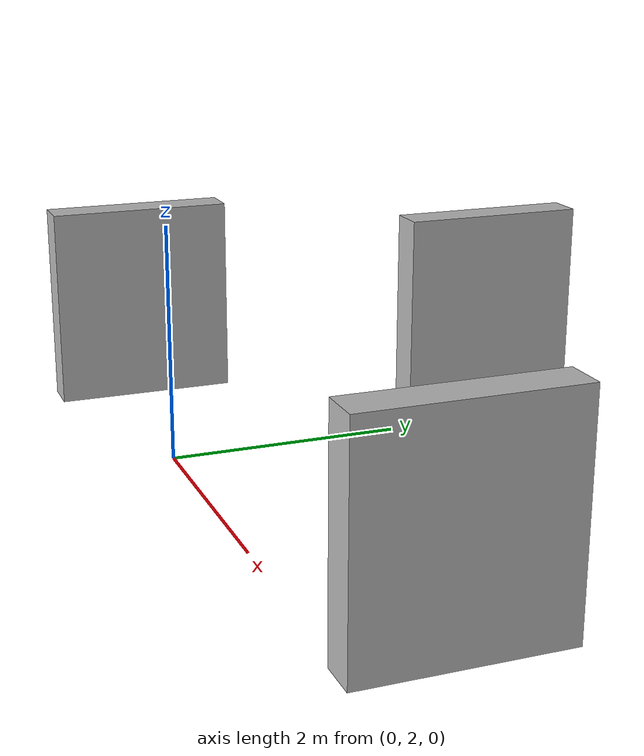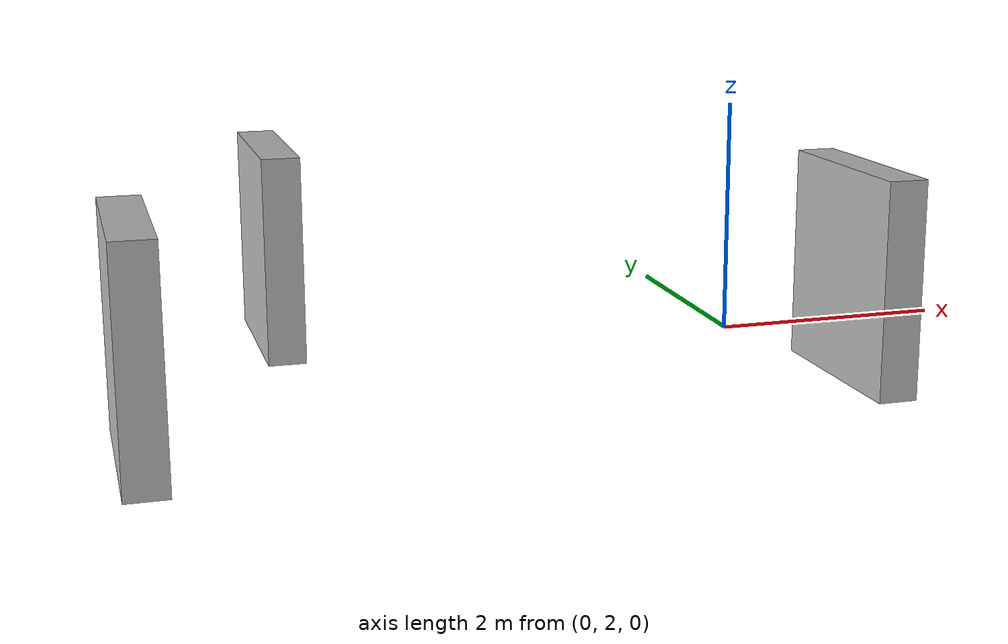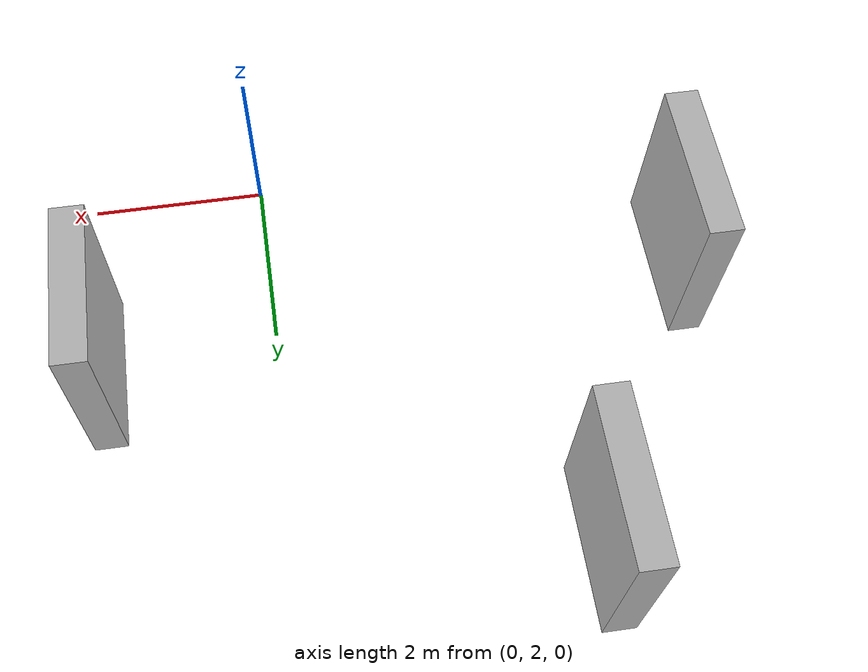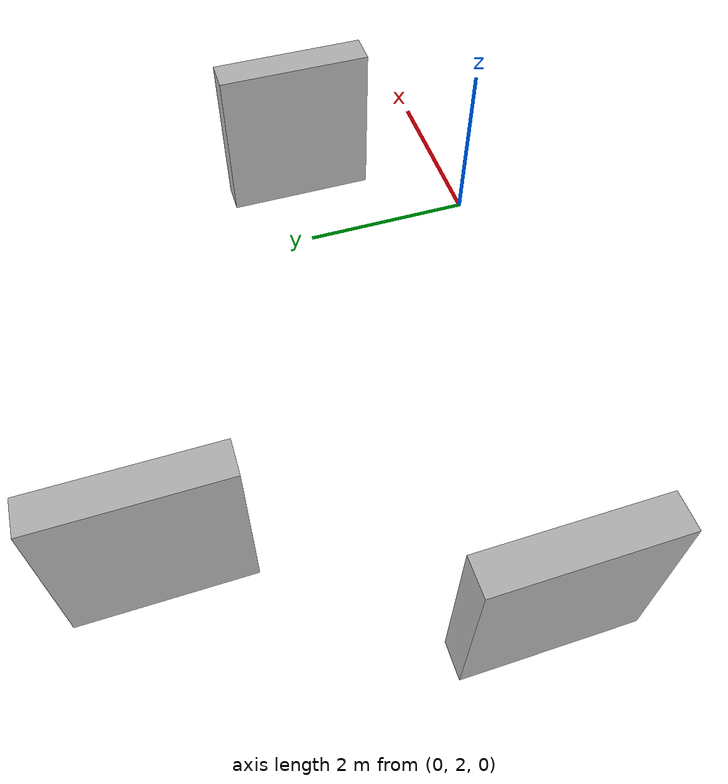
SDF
<sdf version='1.10'>
  <world name='empty'>
    <physics name='1ms' type='ignored'>
      <max_step_size>0.001</max_step_size>
      <real_time_factor>1</real_time_factor>
      <real_time_update_rate>1000</real_time_update_rate>
    </physics>
    <plugin name='gz::sim::systems::Physics' filename='gz-sim-physics-system'/>
    <plugin name='gz::sim::systems::UserCommands' filename='gz-sim-user-commands-system'/>
    <plugin name='gz::sim::systems::SceneBroadcaster' filename='gz-sim-scene-broadcaster-system'/>
    <plugin name='gz::sim::systems::Contact' filename='gz-sim-contact-system'/>
    <gravity>0 0 -9.8000000000000007</gravity>
    <magnetic_field>5.5644999999999998e-06 2.2875799999999999e-05 -4.2388400000000002e-05</magnetic_field>
    <atmosphere type='adiabatic'/>
    <scene>
      <ambient>0.400000006 0.400000006 0.400000006 1</ambient>
      <background>0.699999988 0.699999988 0.699999988 1</background>
      <shadows>true</shadows>
    </scene>

    <light type="directional" name="sun">
      <cast_shadows>true</cast_shadows>
      <pose>0 0 10 0 0 0</pose>
      <diffuse>0.8 0.8 0.8 1</diffuse>
      <specular>0.2 0.2 0.2 1</specular>
      <attenuation>
        <range>1000</range>
        <constant>0.9</constant>
        <linear>0.01</linear>
        <quadratic>0.001</quadratic>
      </attenuation>
      <direction>-0.5 0.1 -0.9</direction>
    </light>

    <model name='aruco_marker_1'>
        <include>
            <static>true</static>
            <pose>-5.09435 3.01249 0 0 -0 0</pose>

            <uri>model://aruco_marker1</uri>
        </include>
	  </model>

	  <model name='aruco_marker_2'>
        <include>
            <static>true</static>
            <pose>2.13768 3.64297 0 0 -0 0</pose>
            <uri>model://aruco_marker2</uri>
        </include>

	  </model>

	  <model name='aruco_marker_3'>
        <static>true</static>
        <include>
            <uri>model://aruco_marker3</uri>
        </include>
        <pose>-3.39118 6.65939 0 0 -0 0</pose>
	  </model>

  </world>
</sdf>

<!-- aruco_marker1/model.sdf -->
<sdf version='1.5'>
  <model name='aruco_marker1'>

    <link name='marker'>
      <pose frame=''>0 0 0 0 0 0</pose>
      <inertial>
        <mass>1</mass>
        </inertial>
        <collision name="collision">
          <geometry>
            <mesh>
              <uri>model://aruco_marker1/meshes/aruco_1_collision.DAE</uri>
            </mesh>
          </geometry>
        </collision>

        <visual name="visual">
          <geometry>
            <mesh>
              <uri>model://aruco_marker1/meshes/aruco_1_visual.DAE</uri>
            </mesh>
          </geometry>
        </visual>
    </link>

  </model>
</sdf>

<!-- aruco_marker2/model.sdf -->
<sdf version='1.5'>
  <model name='aruco_marker2'>

    <link name='marker'>
      <pose frame=''>0 0 0 0 0 0</pose>
      <inertial>
        <mass>1</mass>
        </inertial>
        <collision name="collision">
          <geometry>
            <mesh>
              <uri>model://aruco_marker2/meshes/aruco_2_collision.DAE</uri>
            </mesh>
          </geometry>
        </collision>

        <visual name="visual">
          <geometry>
            <mesh>
              <uri>model://aruco_marker2/meshes/aruco_2_visual.DAE</uri>
            </mesh>
          </geometry>
        </visual>
    </link>

  </model>
</sdf>

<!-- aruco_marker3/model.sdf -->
<sdf version='1.5'>
  <model name='aruco_marker3'>

    <link name='marker'>
      <pose frame=''>0 0 0 0 0 0</pose>
      <inertial>
        <mass>1</mass>
        </inertial>
        <collision name="collision">
          <geometry>
            <mesh>
              <uri>model://aruco_marker3/meshes/aruco_3_collision.DAE</uri>
            </mesh>
          </geometry>
        </collision>

        <visual name="visual">
          <geometry>
            <mesh>
              <uri>model://aruco_marker3/meshes/aruco_3_visual.DAE</uri>
            </mesh>
          </geometry>
        </visual>
    </link>

  </model>
</sdf>
